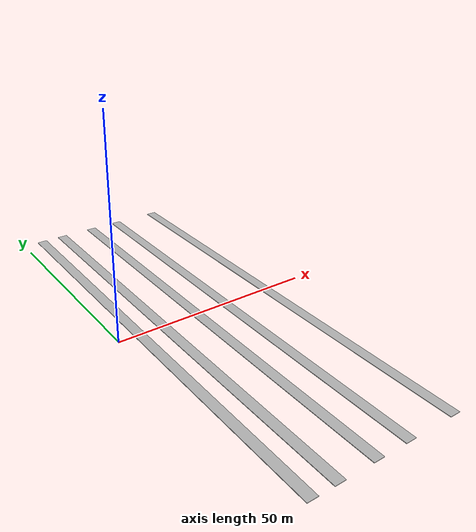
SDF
<sdf version="1.5">
 <world name="default">
  <include><uri>model://sun</uri></include>
  <include><uri>model://step</uri><name>step1</name><pose>5 0 0.16 0 0 0</pose></include>
  <include><uri>model://step</uri><name>step2</name><pose>11 0 0.16 0 0 0</pose></include>
  <include><uri>model://step</uri><name>step3</name><pose>20 0 0.16 0 0 0</pose></include>
  <include><uri>model://step</uri><name>step4</name><pose>28 0 0.16 0 0 0</pose></include>
  <include><uri>model://step</uri><name>step5</name><pose>40 0 0.16 0 0 0</pose></include>
  <scene><sky><clouds><speed>50</speed></clouds></sky><ambient>0 0 0 1.0</ambient><shadows>0</shadows></scene>
 </world>
</sdf>

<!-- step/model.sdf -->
<sdf version="1.4">

  <model name="step">
    <static>true</static>

    <pose>0 0 0.175 0 0 0</pose>
    <link name="link">
      <collision name="collision">
        <geometry>
          <box>
            <size>2.5 108.5 .15</size>
          </box>
        </geometry>
      </collision>
      <visual name="visual">
        <geometry>
          <box>
            <size>2.5 108.5 .15</size>
          </box>
        </geometry>
      </visual>
    </link>
  </model>

</sdf>
